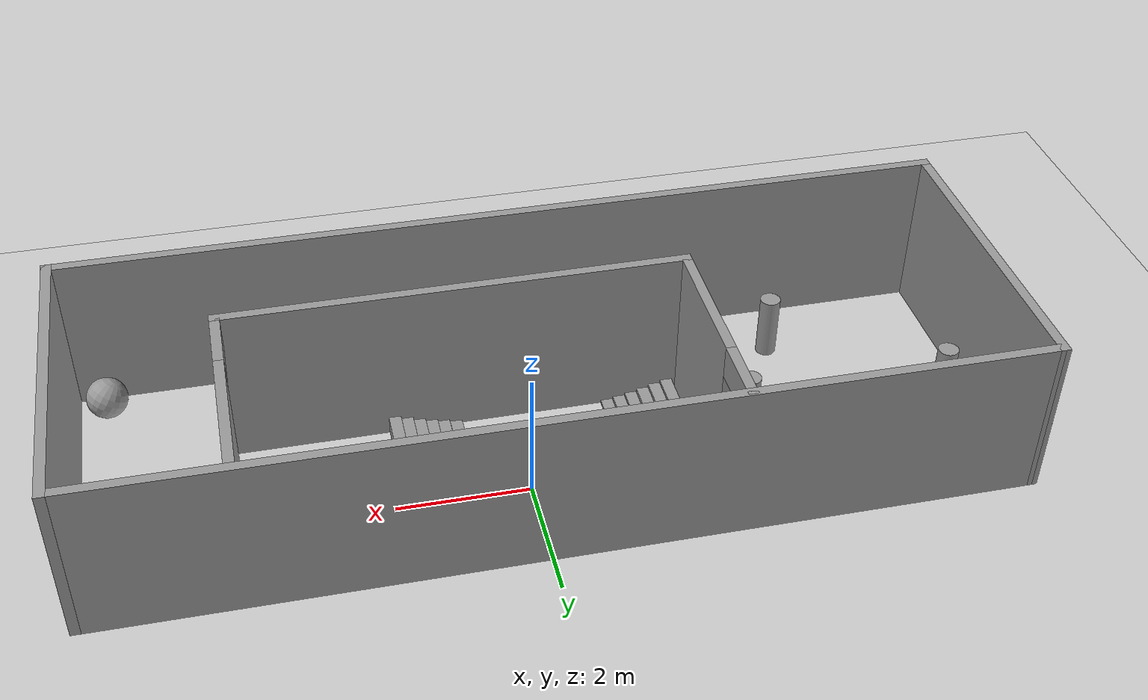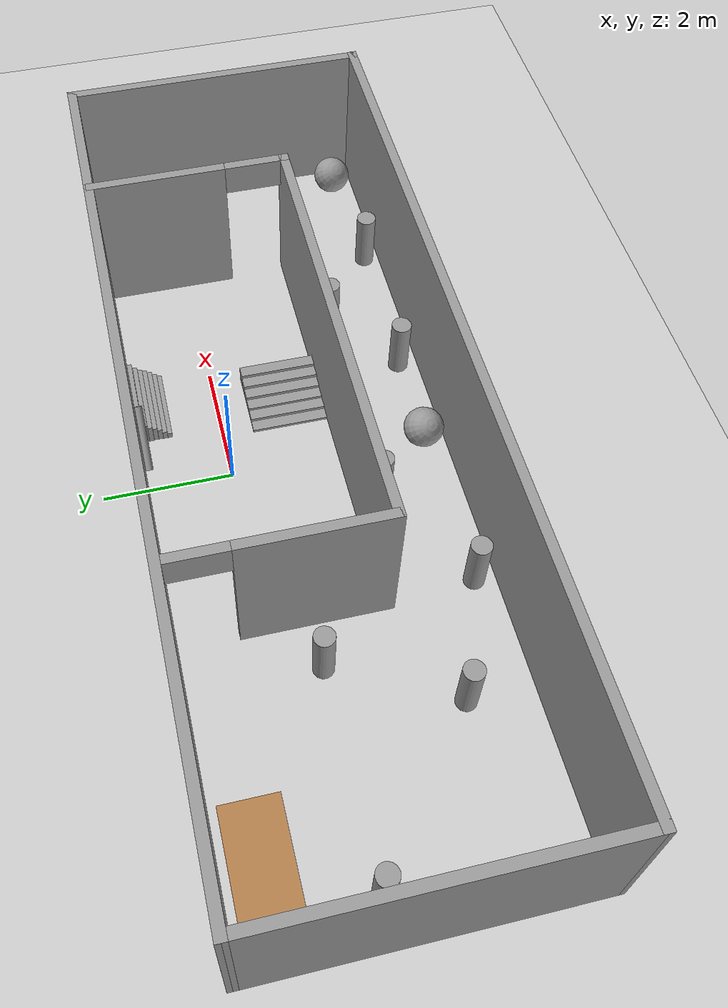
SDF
<sdf version="1.7">
 <world name="default">
  <plugin name="gazebo_ros_state" filename="libgazebo_ros_state.so">
   <ros><namespace>/gazebo</namespace></ros>
  </plugin>
  <physics type="ode">
   <max_step_size>0.001</max_step_size>
   <real_time_factor>1</real_time_factor>
   <real_time_update_rate>1000</real_time_update_rate>
   <ode>
    <solver>
     <type>quick</type>
     <iters>150</iters>
     <sor>1.3</sor>
     <use_dynamic_moi_rescaling>0</use_dynamic_moi_rescaling>
    </solver>
    <constraints>
     <cfm>1e-06</cfm>
     <erp>0.8</erp>
     <contact_max_correcting_vel>0.1</contact_max_correcting_vel>
     <contact_surface_layer>0.005</contact_surface_layer>
    </constraints>
   </ode>
   <gravity>0 0 -9.8</gravity>
  </physics>
  <scene>
   <sky><clouds><speed>12</speed></clouds></sky>
   <ambient>0.4 0.4 0.4 1</ambient>
   <background>0.7 0.7 0.7 1</background>
   <shadows>1</shadows>
  </scene>
  <light name="sun" type="directional">
   <pose>0 0 10 0 -0 0</pose>
   <diffuse>0.8 0.8 0.8 1</diffuse>
   <specular>0.2 0.2 0.2 1</specular>
   <attenuation>
    <range>1000</range>
    <constant>0.9</constant>
    <linear>0.01</linear>
    <quadratic>0.001</quadratic>
   </attenuation>
   <direction>-0.5 0.1 -0.9</direction>
   <spot><inner_angle>0</inner_angle><outer_angle>0</outer_angle><falloff>0</falloff></spot>
  </light>
  <model name="ground_plane">
   <static>1</static>
   <link name="link">
    <collision name="collision">
     <geometry><plane><normal>0 0 1</normal><size>100 100</size></plane></geometry>
     <surface>
      <contact><collide_bitmask>65535</collide_bitmask></contact>
      <friction><ode><mu>100</mu><mu2>50</mu2></ode></friction>
     </surface>
    </collision>
    <visual name="visual">
     <cast_shadows>0</cast_shadows>
     <geometry><plane><normal>0 0 1</normal><size>100 100</size></plane></geometry>
     <material>
      <script><uri>file://media/materials/scripts/gazebo.material</uri><name>Gazebo/Grey</name></script>
     </material>
    </visual>
   </link>
  </model>
  <gravity>0 0 -9.81</gravity>
  <magnetic_field>6e-06 2.3e-05 -4.2e-05</magnetic_field>
  <atmosphere type="adiabatic"/>
  <audio><device>default</device></audio>
  <spherical_coordinates>
   <surface_model>EARTH_WGS84</surface_model>
   <latitude_deg>0</latitude_deg>
   <longitude_deg>0</longitude_deg>
   <elevation>0</elevation>
   <heading_deg>0</heading_deg>
  </spherical_coordinates>
  <model name="world1.world">
   <pose>-0.325077 -1.045 0 0 -0 0</pose>
   <link name="Wall_12">
    <collision name="Wall_12_Collision">
     <geometry><box><size>13.75 0.15 2.5</size></box></geometry>
     <pose>0 0 1.25 0 -0 0</pose>
    </collision>
    <visual name="Wall_12_Visual">
     <pose>0 0 1.25 0 -0 0</pose>
     <geometry><box><size>13.75 0.15 2.5</size></box></geometry>
     <material>
      <script><uri>file://media/materials/scripts/gazebo.material</uri><name>Gazebo/Grey</name></script>
      <ambient>1 1 1 1</ambient>
     </material>
     <meta><layer>0</layer></meta>
    </visual>
    <pose>-0.004923 2.425 0 0 -0 0</pose>
   </link>
   <link name="Wall_13">
    <collision name="Wall_13_Collision">
     <geometry><box><size>5 0.15 2.5</size></box></geometry>
     <pose>0 0 1.25 0 -0 0</pose>
    </collision>
    <visual name="Wall_13_Visual">
     <pose>0 0 1.25 0 -0 0</pose>
     <geometry><box><size>5 0.15 2.5</size></box></geometry>
     <material>
      <script><uri>file://media/materials/scripts/gazebo.material</uri><name>Gazebo/Grey</name></script>
      <ambient>1 1 1 1</ambient>
     </material>
     <meta><layer>0</layer></meta>
    </visual>
    <pose>6.79508 -0 0 0 -0 -1.5708</pose>
   </link>
   <link name="Wall_14">
    <collision name="Wall_14_Collision">
     <geometry><box><size>0.16 0.15 2.5</size></box></geometry>
     <pose>0 0 1.25 0 -0 0</pose>
    </collision>
    <visual name="Wall_14_Visual">
     <pose>0 0 1.25 0 -0 0</pose>
     <geometry><box><size>0.16 0.15 2.5</size></box></geometry>
     <material>
      <script><uri>file://media/materials/scripts/gazebo.material</uri><name>Gazebo/Grey</name></script>
      <ambient>1 1 1 1</ambient>
     </material>
     <meta><layer>0</layer></meta>
    </visual>
    <pose>6.80008 -2.425 0 0 -0 0</pose>
   </link>
   <link name="Wall_15">
    <collision name="Wall_15_Collision">
     <geometry><box><size>13.75 0.15 2.5</size></box></geometry>
     <pose>0 0 1.25 0 -0 0</pose>
    </collision>
    <visual name="Wall_15_Visual">
     <pose>0 0 1.25 0 -0 0</pose>
     <geometry><box><size>13.75 0.15 2.5</size></box></geometry>
     <material>
      <script><uri>file://media/materials/scripts/gazebo.material</uri><name>Gazebo/Grey</name></script>
      <ambient>1 1 1 1</ambient>
     </material>
     <meta><layer>0</layer></meta>
    </visual>
    <pose>0.005077 -2.425 0 0 -0 3.14159</pose>
   </link>
   <link name="Wall_16">
    <collision name="Wall_16_Collision">
     <geometry><box><size>5.00001 0.15 2.5</size></box></geometry>
     <pose>0 0 1.25 0 -0 0</pose>
    </collision>
    <visual name="Wall_16_Visual">
     <pose>0 0 1.25 0 -0 0</pose>
     <geometry><box><size>5.00001 0.15 2.5</size></box></geometry>
     <material>
      <script><uri>file://media/materials/scripts/gazebo.material</uri><name>Gazebo/Grey</name></script>
      <ambient>1 1 1 1</ambient>
     </material>
     <meta><layer>0</layer></meta>
    </visual>
    <pose>-6.79992 -0 0 0 -0 1.57286</pose>
   </link>
   <link name="Wall_18">
    <pose>-2.36492 0.845 0 0 -0 -1.5708</pose>
    <visual name="Wall_18_Visual_0">
     <pose>-1.5725 0 1.25 0 -0 0</pose>
     <geometry><box><size>0.105 0.15 2.5</size></box></geometry>
     <material>
      <script><uri>file://media/materials/scripts/gazebo.material</uri><name>Gazebo/Grey</name></script>
      <ambient>1 1 1 1</ambient>
     </material>
     <meta><layer>0</layer></meta>
    </visual>
    <collision name="Wall_18_Collision_0">
     <geometry><box><size>0.105 0.15 2.5</size></box></geometry>
     <pose>-1.5725 0 1.25 0 -0 0</pose>
    </collision>
    <visual name="Wall_18_Visual_1">
     <pose>0.5025 0 1.25 0 -0 0</pose>
     <geometry><box><size>2.245 0.15 2.5</size></box></geometry>
     <material>
      <script><uri>file://media/materials/scripts/gazebo.material</uri><name>Gazebo/Grey</name></script>
      <ambient>1 1 1 1</ambient>
     </material>
     <meta><layer>0</layer></meta>
    </visual>
    <collision name="Wall_18_Collision_1">
     <geometry><box><size>2.245 0.15 2.5</size></box></geometry>
     <pose>0.5025 0 1.25 0 -0 0</pose>
    </collision>
    <visual name="Wall_18_Visual_2">
     <pose>-1.07 0 2.25 0 -0 0</pose>
     <geometry><box><size>0.9 0.15 0.5</size></box></geometry>
     <material>
      <script><uri>file://media/materials/scripts/gazebo.material</uri><name>Gazebo/Grey</name></script>
      <ambient>1 1 1 1</ambient>
     </material>
     <meta><layer>0</layer></meta>
    </visual>
    <collision name="Wall_18_Collision_2">
     <geometry><box><size>0.9 0.15 0.5</size></box></geometry>
     <pose>-1.07 0 2.25 0 -0 0</pose>
    </collision>
   </link>
   <link name="Wall_19">
    <collision name="Wall_19_Collision">
     <geometry><box><size>7 0.15 2.5</size></box></geometry>
     <pose>0 0 1.25 0 -0 0</pose>
    </collision>
    <visual name="Wall_19_Visual">
     <pose>0 0 1.25 0 -0 0</pose>
     <geometry><box><size>7 0.15 2.5</size></box></geometry>
     <material>
      <script><uri>file://media/materials/scripts/gazebo.material</uri><name>Gazebo/Grey</name></script>
      <ambient>1 1 1 1</ambient>
     </material>
     <meta><layer>0</layer></meta>
    </visual>
    <pose>1.06008 -0.705 0 0 -0 0</pose>
   </link>
   <link name="Wall_20">
    <pose>4.48508 0.845 0 0 -0 1.5708</pose>
    <visual name="Wall_20_Visual_0">
     <pose>-1.5525 0 1.25 0 -0 0</pose>
     <geometry><box><size>0.145 0.15 2.5</size></box></geometry>
     <material>
      <script><uri>file://media/materials/scripts/gazebo.material</uri><name>Gazebo/Grey</name></script>
      <ambient>1 1 1 1</ambient>
     </material>
     <meta><layer>0</layer></meta>
    </visual>
    <collision name="Wall_20_Collision_0">
     <geometry><box><size>0.145 0.15 2.5</size></box></geometry>
     <pose>-1.5525 0 1.25 0 -0 0</pose>
    </collision>
    <visual name="Wall_20_Visual_1">
     <pose>0.5225 0 1.25 0 -0 0</pose>
     <geometry><box><size>2.205 0.15 2.5</size></box></geometry>
     <material>
      <script><uri>file://media/materials/scripts/gazebo.material</uri><name>Gazebo/Grey</name></script>
      <ambient>1 1 1 1</ambient>
     </material>
     <meta><layer>0</layer></meta>
    </visual>
    <collision name="Wall_20_Collision_1">
     <geometry><box><size>2.205 0.15 2.5</size></box></geometry>
     <pose>0.5225 0 1.25 0 -0 0</pose>
    </collision>
    <visual name="Wall_20_Visual_2">
     <pose>-1.03 0 2.25 0 -0 0</pose>
     <geometry><box><size>0.9 0.15 0.5</size></box></geometry>
     <material>
      <script><uri>file://media/materials/scripts/gazebo.material</uri><name>Gazebo/Grey</name></script>
      <ambient>1 1 1 1</ambient>
     </material>
     <meta><layer>0</layer></meta>
    </visual>
    <collision name="Wall_20_Collision_2">
     <geometry><box><size>0.9 0.15 0.5</size></box></geometry>
     <pose>-1.03 0 2.25 0 -0 0</pose>
    </collision>
   </link>
   <static>1</static>
  </model>
  <model name="table_0">
   <static>1</static>
   <link name="link">
    <collision name="surface">
     <pose>0 0 1 0 -0 0</pose>
     <geometry><box><size>1.5 0.8 0.03</size></box></geometry>
     <surface><friction><ode><mu>0.6</mu><mu2>0.6</mu2></ode></friction></surface>
    </collision>
    <visual name="visual1">
     <pose>0 0 1 0 -0 0</pose>
     <geometry><box><size>1.5 0.8 0.03</size></box></geometry>
     <material>
      <script><uri>file://media/materials/scripts/gazebo.material</uri><name>Gazebo/Wood</name></script>
     </material>
    </visual>
    <collision name="front_left_leg">
     <pose>0.68 0.38 0.5 0 -0 0</pose>
     <geometry><cylinder><radius>0.02</radius><length>1</length></cylinder></geometry>
    </collision>
    <visual name="front_left_leg">
     <pose>0.68 0.38 0.5 0 -0 0</pose>
     <geometry><cylinder><radius>0.02</radius><length>1</length></cylinder></geometry>
     <material>
      <script><uri>file://media/materials/scripts/gazebo.material</uri><name>Gazebo/Grey</name></script>
     </material>
    </visual>
    <collision name="front_right_leg">
     <pose>0.68 -0.38 0.5 0 -0 0</pose>
     <geometry><cylinder><radius>0.02</radius><length>1</length></cylinder></geometry>
    </collision>
    <visual name="front_right_leg">
     <pose>0.68 -0.38 0.5 0 -0 0</pose>
     <geometry><cylinder><radius>0.02</radius><length>1</length></cylinder></geometry>
     <material>
      <script><uri>file://media/materials/scripts/gazebo.material</uri><name>Gazebo/Grey</name></script>
     </material>
    </visual>
    <collision name="back_right_leg">
     <pose>-0.68 -0.38 0.5 0 -0 0</pose>
     <geometry><cylinder><radius>0.02</radius><length>1</length></cylinder></geometry>
    </collision>
    <visual name="back_right_leg">
     <pose>-0.68 -0.38 0.5 0 -0 0</pose>
     <geometry><cylinder><radius>0.02</radius><length>1</length></cylinder></geometry>
     <material>
      <script><uri>file://media/materials/scripts/gazebo.material</uri><name>Gazebo/Grey</name></script>
     </material>
    </visual>
    <collision name="back_left_leg">
     <pose>-0.68 0.38 0.5 0 -0 0</pose>
     <geometry><cylinder><radius>0.02</radius><length>1</length></cylinder></geometry>
    </collision>
    <visual name="back_left_leg">
     <pose>-0.68 0.38 0.5 0 -0 0</pose>
     <geometry><cylinder><radius>0.02</radius><length>1</length></cylinder></geometry>
     <material>
      <script><uri>file://media/materials/scripts/gazebo.material</uri><name>Gazebo/Grey</name></script>
     </material>
    </visual>
   </link>
   <pose>-6.08584 0.782727 0 0 -0 0</pose>
  </model>
  <model name="unit_cylinder_0">
   <pose>4.02247 -3.14507 0.499994 0 -0 -0.000214</pose>
   <link name="link">
    <inertial>
     <mass>1</mass>
     <inertia><ixx>0.145833</ixx><ixy>0</ixy><ixz>0</ixz><iyy>0.145833</iyy><iyz>0</iyz><izz>0.125</izz></inertia>
    </inertial>
    <collision name="collision">
     <geometry><cylinder><radius>0.156489</radius><length>1</length></cylinder></geometry>
    </collision>
    <visual name="visual">
     <geometry><cylinder><radius>0.156489</radius><length>1</length></cylinder></geometry>
     <material>
      <script><name>Gazebo/Grey</name><uri>file://media/materials/scripts/gazebo.material</uri></script>
     </material>
    </visual>
   </link>
  </model>
  <model name="unit_cylinder_0_clone">
   <pose>2.65479 -2.17917 0.499996 0 -0 -0.000124</pose>
   <link name="link">
    <inertial>
     <mass>1</mass>
     <inertia><ixx>0.145833</ixx><ixy>0</ixy><ixz>0</ixz><iyy>0.145833</iyy><iyz>0</iyz><izz>0.125</izz></inertia>
    </inertial>
    <collision name="collision">
     <geometry><cylinder><radius>0.156489</radius><length>1</length></cylinder></geometry>
    </collision>
    <visual name="visual">
     <geometry><cylinder><radius>0.156489</radius><length>1</length></cylinder></geometry>
     <material>
      <script><name>Gazebo/Grey</name><uri>file://media/materials/scripts/gazebo.material</uri></script>
     </material>
    </visual>
   </link>
  </model>
  <model name="unit_cylinder_0_clone_clone">
   <pose>1.5579 -3.08066 0.499993 0 0 -0.000124</pose>
   <link name="link">
    <inertial>
     <mass>1</mass>
     <inertia><ixx>0.145833</ixx><ixy>0</ixy><ixz>0</ixz><iyy>0.145833</iyy><iyz>0</iyz><izz>0.125</izz></inertia>
    </inertial>
    <collision name="collision">
     <geometry><cylinder><radius>0.156489</radius><length>1</length></cylinder></geometry>
    </collision>
    <visual name="visual">
     <geometry><cylinder><radius>0.156489</radius><length>1</length></cylinder></geometry>
     <material>
      <script><name>Gazebo/Grey</name><uri>file://media/materials/scripts/gazebo.material</uri></script>
     </material>
    </visual>
   </link>
  </model>
  <model name="unit_cylinder_0_clone_clone_0">
   <pose>-0.870477 -2.13106 0.499996 0 -0 -0.000124</pose>
   <link name="link">
    <inertial>
     <mass>1</mass>
     <inertia><ixx>0.145833</ixx><ixy>0</ixy><ixz>0</ixz><iyy>0.145833</iyy><iyz>0</iyz><izz>0.125</izz></inertia>
    </inertial>
    <collision name="collision">
     <geometry><cylinder><radius>0.156489</radius><length>1</length></cylinder></geometry>
    </collision>
    <visual name="visual">
     <geometry><cylinder><radius>0.156489</radius><length>1</length></cylinder></geometry>
     <material>
      <script><name>Gazebo/Grey</name><uri>file://media/materials/scripts/gazebo.material</uri></script>
     </material>
    </visual>
   </link>
  </model>
  <model name="unit_cylinder_0_clone_clone_1">
   <pose>-2.58628 -3.07057 0.499997 0 -0 -0.000124</pose>
   <link name="link">
    <inertial>
     <mass>1</mass>
     <inertia><ixx>0.145833</ixx><ixy>0</ixy><ixz>0</ixz><iyy>0.145833</iyy><iyz>0</iyz><izz>0.125</izz></inertia>
    </inertial>
    <collision name="collision">
     <geometry><cylinder><radius>0.156489</radius><length>1</length></cylinder></geometry>
    </collision>
    <visual name="visual">
     <geometry><cylinder><radius>0.156489</radius><length>1</length></cylinder></geometry>
     <material>
      <script><name>Gazebo/Grey</name><uri>file://media/materials/scripts/gazebo.material</uri></script>
     </material>
    </visual>
   </link>
  </model>
  <model name="unit_cylinder_0_clone_clone_2">
   <pose>-4.34387 -2.39856 0.499996 0 -0 -0.000124</pose>
   <link name="link">
    <inertial>
     <mass>1</mass>
     <inertia><ixx>0.145833</ixx><ixy>0</ixy><ixz>0</ixz><iyy>0.145833</iyy><iyz>0</iyz><izz>0.125</izz></inertia>
    </inertial>
    <collision name="collision">
     <geometry><cylinder><radius>0.156489</radius><length>1</length></cylinder></geometry>
    </collision>
    <visual name="visual">
     <geometry><cylinder><radius>0.156489</radius><length>1</length></cylinder></geometry>
     <material>
      <script><name>Gazebo/Grey</name><uri>file://media/materials/scripts/gazebo.material</uri></script>
     </material>
    </visual>
   </link>
  </model>
  <model name="unit_cylinder_0_clone_clone_3">
   <pose>-6.56896 -0.625653 0.499992 0 0 -0.000123</pose>
   <link name="link">
    <inertial>
     <mass>1</mass>
     <inertia><ixx>0.145833</ixx><ixy>0</ixy><ixz>0</ixz><iyy>0.145833</iyy><iyz>0</iyz><izz>0.125</izz></inertia>
    </inertial>
    <collision name="collision">
     <geometry><cylinder><radius>0.156489</radius><length>1</length></cylinder></geometry>
    </collision>
    <visual name="visual">
     <geometry><cylinder><radius>0.156489</radius><length>1</length></cylinder></geometry>
     <material>
      <script><name>Gazebo/Grey</name><uri>file://media/materials/scripts/gazebo.material</uri></script>
     </material>
    </visual>
   </link>
  </model>
  <model name="unit_cylinder_0_clone_clone_4">
   <pose>-3.44687 -0.61696 0.499997 0 -0 -0.000124</pose>
   <link name="link">
    <inertial>
     <mass>1</mass>
     <inertia><ixx>0.145833</ixx><ixy>0</ixy><ixz>0</ixz><iyy>0.145833</iyy><iyz>0</iyz><izz>0.125</izz></inertia>
    </inertial>
    <collision name="collision">
     <geometry><cylinder><radius>0.156489</radius><length>1</length></cylinder></geometry>
    </collision>
    <visual name="visual">
     <geometry><cylinder><radius>0.156489</radius><length>1</length></cylinder></geometry>
     <material>
      <script><name>Gazebo/Grey</name><uri>file://media/materials/scripts/gazebo.material</uri></script>
     </material>
    </visual>
   </link>
  </model>
  <model name="unit_sphere">
   <pose>5.96174 -3.01695 0.314241 -0.624493 -0.090109 1.83206</pose>
   <link name="link">
    <inertial>
     <mass>1</mass>
     <inertia><ixx>0.1</ixx><ixy>0</ixy><ixz>0</ixz><iyy>0.1</iyy><iyz>0</iyz><izz>0.1</izz></inertia>
    </inertial>
    <collision name="collision"><geometry><sphere><radius>0.314241</radius></sphere></geometry></collision>
    <visual name="visual">
     <geometry><sphere><radius>0.314241</radius></sphere></geometry>
     <material>
      <script><name>Gazebo/Grey</name><uri>file://media/materials/scripts/gazebo.material</uri></script>
     </material>
    </visual>
   </link>
  </model>
  <model name="unit_sphere_clone">
   <pose>0.019667 -3.05296 0.314241 -0.624493 -0.090109 1.83206</pose>
   <link name="link">
    <inertial>
     <mass>1</mass>
     <inertia><ixx>0.1</ixx><ixy>0</ixy><ixz>0</ixz><iyy>0.1</iyy><iyz>0</iyz><izz>0.1</izz></inertia>
    </inertial>
    <collision name="collision"><geometry><sphere><radius>0.314241</radius></sphere></geometry></collision>
    <visual name="visual">
     <geometry><sphere><radius>0.314241</radius></sphere></geometry>
     <material>
      <script><name>Gazebo/Grey</name><uri>file://media/materials/scripts/gazebo.material</uri></script>
     </material>
    </visual>
   </link>
  </model>
  <model name="unit_box_clone_clone_0_clone_0">
   <pose>1.54603 1.26688 0.240385 -7e-06 -0 1.56895</pose>
   <link name="link">
    <inertial>
     <mass>1</mass>
     <inertia>
      <ixx>0.166667</ixx>
      <ixy>0</ixy>
      <ixz>0</ixz>
      <iyy>0.166667</iyy>
      <iyz>0</iyz>
      <izz>0.166667</izz>
     </inertia>
    </inertial>
    <collision name="collision"><geometry><box><size>0.073006 1.19698 0.480819</size></box></geometry></collision>
    <visual name="visual">
     <geometry><box><size>0.073006 1.19698 0.480819</size></box></geometry>
     <material>
      <script><name>Gazebo/Grey</name><uri>file://media/materials/scripts/gazebo.material</uri></script>
     </material>
    </visual>
   </link>
  </model>
  <model name="unit_box_clone_clone_0_clone_1">
   <pose>1.52868 1.1904 0.201564 1e-05 -0 1.56292</pose>
   <link name="link">
    <inertial>
     <mass>1</mass>
     <inertia>
      <ixx>0.166667</ixx>
      <ixy>0</ixy>
      <ixz>0</ixz>
      <iyy>0.166667</iyy>
      <iyz>0</iyz>
      <izz>0.166667</izz>
     </inertia>
    </inertial>
    <collision name="collision"><geometry><box><size>0.073006 1.19698 0.40314</size></box></geometry></collision>
    <visual name="visual">
     <geometry><box><size>0.073006 1.19698 0.40314</size></box></geometry>
     <material>
      <script><name>Gazebo/Grey</name><uri>file://media/materials/scripts/gazebo.material</uri></script>
     </material>
    </visual>
   </link>
  </model>
  <model name="unit_box_clone_clone_0_clone_2">
   <pose>1.52438 1.11742 0.167292 1.5e-05 -0 1.56292</pose>
   <link name="link">
    <inertial>
     <mass>1</mass>
     <inertia>
      <ixx>0.166667</ixx>
      <ixy>0</ixy>
      <ixz>0</ixz>
      <iyy>0.166667</iyy>
      <iyz>0</iyz>
      <izz>0.166667</izz>
     </inertia>
    </inertial>
    <collision name="collision"><geometry><box><size>0.073006 1.19698 0.334602</size></box></geometry></collision>
    <visual name="visual">
     <geometry><box><size>0.073006 1.19698 0.334602</size></box></geometry>
     <material>
      <script><name>Gazebo/Grey</name><uri>file://media/materials/scripts/gazebo.material</uri></script>
     </material>
    </visual>
   </link>
  </model>
  <model name="unit_box_clone_clone_0_clone_3">
   <pose>1.53458 1.04432 0.139411 8e-06 -0 1.5629</pose>
   <link name="link">
    <inertial>
     <mass>1</mass>
     <inertia>
      <ixx>0.166667</ixx>
      <ixy>0</ixy>
      <ixz>0</ixz>
      <iyy>0.166667</iyy>
      <iyz>0</iyz>
      <izz>0.166667</izz>
     </inertia>
    </inertial>
    <collision name="collision"><geometry><box><size>0.073006 1.19698 0.27883</size></box></geometry></collision>
    <visual name="visual">
     <geometry><box><size>0.073006 1.19698 0.27883</size></box></geometry>
     <material>
      <script><name>Gazebo/Grey</name><uri>file://media/materials/scripts/gazebo.material</uri></script>
     </material>
    </visual>
   </link>
  </model>
  <model name="unit_box_clone_clone_0_clone_4">
   <pose>1.5332 0.97132 0.111864 1.1e-05 -1e-06 1.5629</pose>
   <link name="link">
    <inertial>
     <mass>1</mass>
     <inertia>
      <ixx>0.166667</ixx>
      <ixy>0</ixy>
      <ixz>0</ixz>
      <iyy>0.166667</iyy>
      <iyz>0</iyz>
      <izz>0.166667</izz>
     </inertia>
    </inertial>
    <collision name="collision"><geometry><box><size>0.073006 1.19698 0.223741</size></box></geometry></collision>
    <visual name="visual">
     <geometry><box><size>0.073006 1.19698 0.223741</size></box></geometry>
     <material>
      <script><name>Gazebo/Grey</name><uri>file://media/materials/scripts/gazebo.material</uri></script>
     </material>
    </visual>
   </link>
  </model>
  <model name="unit_box_clone_clone_0_clone_5">
   <pose>1.5295 0.898335 0.076837 -8e-06 -0 1.56289</pose>
   <link name="link">
    <inertial>
     <mass>1</mass>
     <inertia>
      <ixx>0.166667</ixx>
      <ixy>0</ixy>
      <ixz>0</ixz>
      <iyy>0.166667</iyy>
      <iyz>0</iyz>
      <izz>0.166667</izz>
     </inertia>
    </inertial>
    <collision name="collision"><geometry><box><size>0.073006 1.19698 0.153703</size></box></geometry></collision>
    <visual name="visual">
     <geometry><box><size>0.073006 1.19698 0.153703</size></box></geometry>
     <material>
      <script><name>Gazebo/Grey</name><uri>file://media/materials/scripts/gazebo.material</uri></script>
     </material>
    </visual>
   </link>
  </model>
  <model name="unit_box_clone_clone_0_clone_6">
   <pose>1.52826 0.825295 0.04958 -9e-06 -0 1.56282</pose>
   <link name="link">
    <inertial>
     <mass>1</mass>
     <inertia>
      <ixx>0.166667</ixx>
      <ixy>0</ixy>
      <ixz>0</ixz>
      <iyy>0.166667</iyy>
      <iyz>0</iyz>
      <izz>0.166667</izz>
     </inertia>
    </inertial>
    <collision name="collision"><geometry><box><size>0.073006 1.19698 0.09919</size></box></geometry></collision>
    <visual name="visual">
     <geometry><box><size>0.073006 1.19698 0.09919</size></box></geometry>
     <material>
      <script><name>Gazebo/Grey</name><uri>file://media/materials/scripts/gazebo.material</uri></script>
     </material>
    </visual>
   </link>
  </model>
  <model name="unit_box_clone_clone_clone">
   <pose>-1.53163 -1.07582 0.022793 0 -0 3.7e-05</pose>
   <link name="link">
    <inertial>
     <mass>1</mass>
     <inertia>
      <ixx>0.166667</ixx>
      <ixy>0</ixy>
      <ixz>0</ixz>
      <iyy>0.166667</iyy>
      <iyz>0</iyz>
      <izz>0.166667</izz>
     </inertia>
    </inertial>
    <collision name="collision"><geometry><box><size>0.182518 1.19698 0.045586</size></box></geometry></collision>
    <visual name="visual">
     <geometry><box><size>0.182518 1.19698 0.045586</size></box></geometry>
     <material>
      <script><name>Gazebo/Grey</name><uri>file://media/materials/scripts/gazebo.material</uri></script>
     </material>
    </visual>
   </link>
  </model>
  <model name="unit_box_clone_clone_clone_clone">
   <pose>-1.72169 -1.07466 0.04263 0 -0 3.7e-05</pose>
   <link name="link">
    <inertial>
     <mass>1</mass>
     <inertia>
      <ixx>0.166667</ixx>
      <ixy>0</ixy>
      <ixz>0</ixz>
      <iyy>0.166667</iyy>
      <iyz>0</iyz>
      <izz>0.166667</izz>
     </inertia>
    </inertial>
    <collision name="collision">
     <geometry><box><size>0.182518 1.19698 0.0852595</size></box></geometry>
    </collision>
    <visual name="visual">
     <geometry><box><size>0.182518 1.19698 0.0852595</size></box></geometry>
     <material>
      <script><name>Gazebo/Grey</name><uri>file://media/materials/scripts/gazebo.material</uri></script>
     </material>
    </visual>
   </link>
  </model>
  <model name="unit_box_clone_clone_clone_clone_0">
   <pose>-1.90641 -1.0734 0.064213 0 -0 3.7e-05</pose>
   <link name="link">
    <inertial>
     <mass>1</mass>
     <inertia>
      <ixx>0.166667</ixx>
      <ixy>0</ixy>
      <ixz>0</ixz>
      <iyy>0.166667</iyy>
      <iyz>0</iyz>
      <izz>0.166667</izz>
     </inertia>
    </inertial>
    <collision name="collision"><geometry><box><size>0.182518 1.19698 0.128426</size></box></geometry></collision>
    <visual name="visual">
     <geometry><box><size>0.182518 1.19698 0.128426</size></box></geometry>
     <material>
      <script><name>Gazebo/Grey</name><uri>file://media/materials/scripts/gazebo.material</uri></script>
     </material>
    </visual>
   </link>
  </model>
  <model name="unit_box_clone_clone_clone_clone_1">
   <pose>-2.09635 -1.07651 0.089122 0 -0 0</pose>
   <link name="link">
    <inertial>
     <mass>1</mass>
     <inertia>
      <ixx>0.166667</ixx>
      <ixy>0</ixy>
      <ixz>0</ixz>
      <iyy>0.166667</iyy>
      <iyz>0</iyz>
      <izz>0.166667</izz>
     </inertia>
    </inertial>
    <collision name="collision"><geometry><box><size>0.182518 1.19698 0.178244</size></box></geometry></collision>
    <visual name="visual">
     <geometry><box><size>0.182518 1.19698 0.178244</size></box></geometry>
     <material>
      <script><name>Gazebo/Grey</name><uri>file://media/materials/scripts/gazebo.material</uri></script>
     </material>
    </visual>
   </link>
  </model>
  <model name="unit_box_clone_clone_clone_clone_2">
   <pose>-2.27932 -1.07646 0.11772 0 0 -2.8e-05</pose>
   <link name="link">
    <inertial>
     <mass>1</mass>
     <inertia>
      <ixx>0.166667</ixx>
      <ixy>0</ixy>
      <ixz>0</ixz>
      <iyy>0.166667</iyy>
      <iyz>0</iyz>
      <izz>0.166667</izz>
     </inertia>
    </inertial>
    <collision name="collision"><geometry><box><size>0.182518 1.19698 0.23544</size></box></geometry></collision>
    <visual name="visual">
     <geometry><box><size>0.182518 1.19698 0.23544</size></box></geometry>
     <material>
      <script><name>Gazebo/Grey</name><uri>file://media/materials/scripts/gazebo.material</uri></script>
     </material>
    </visual>
   </link>
  </model>
  <model name="unit_box_clone_clone_clone_clone_3">
   <pose>-2.46185 -1.06956 0.144685 0 0 -2.9e-05</pose>
   <link name="link">
    <inertial>
     <mass>1</mass>
     <inertia>
      <ixx>0.166667</ixx>
      <ixy>0</ixy>
      <ixz>0</ixz>
      <iyy>0.166667</iyy>
      <iyz>0</iyz>
      <izz>0.166667</izz>
     </inertia>
    </inertial>
    <collision name="collision"><geometry><box><size>0.182518 1.19698 0.289369</size></box></geometry></collision>
    <visual name="visual">
     <geometry><box><size>0.182518 1.19698 0.289369</size></box></geometry>
     <material>
      <script><name>Gazebo/Grey</name><uri>file://media/materials/scripts/gazebo.material</uri></script>
     </material>
    </visual>
   </link>
  </model>
  <model name="unit_cylinder">
   <pose>0.729555 1.24344 0.371206 -0.033054 0.859193 -0.048326</pose>
   <link name="link">
    <inertial>
     <mass>1</mass>
     <inertia><ixx>0.145833</ixx><ixy>0</ixy><ixz>0</ixz><iyy>0.145833</iyy><iyz>0</iyz><izz>0.125</izz></inertia>
    </inertial>
    <collision name="collision">
     <geometry><cylinder><radius>0.059224</radius><length>1</length></cylinder></geometry>
    </collision>
    <visual name="visual">
     <geometry><cylinder><radius>0.059224</radius><length>1</length></cylinder></geometry>
     <material>
      <script><name>Gazebo/Grey</name><uri>file://media/materials/scripts/gazebo.material</uri></script>
     </material>
    </visual>
   </link>
  </model>
  <model name="unit_box_clone_clone_clone_clone_3_clone">
   <pose>1.74807 -1.0764 0.144684 0 0 -0.000964</pose>
   <link name="link">
    <inertial>
     <mass>1</mass>
     <inertia>
      <ixx>0.166667</ixx>
      <ixy>0</ixy>
      <ixz>0</ixz>
      <iyy>0.166667</iyy>
      <iyz>0</iyz>
      <izz>0.166667</izz>
     </inertia>
    </inertial>
    <collision name="collision"><geometry><box><size>0.182518 1.19698 0.289369</size></box></geometry></collision>
    <visual name="visual">
     <geometry><box><size>0.182518 1.19698 0.289369</size></box></geometry>
     <material>
      <script><name>Gazebo/Grey</name><uri>file://media/materials/scripts/gazebo.material</uri></script>
     </material>
    </visual>
   </link>
  </model>
  <model name="unit_box_clone_clone_clone_clone_2_clone">
   <pose>1.56541 -1.07643 0.11772 -0 -0 -0.00087</pose>
   <link name="link">
    <inertial>
     <mass>1</mass>
     <inertia>
      <ixx>0.166667</ixx>
      <ixy>0</ixy>
      <ixz>0</ixz>
      <iyy>0.166667</iyy>
      <iyz>0</iyz>
      <izz>0.166667</izz>
     </inertia>
    </inertial>
    <collision name="collision"><geometry><box><size>0.182518 1.19698 0.23544</size></box></geometry></collision>
    <visual name="visual">
     <geometry><box><size>0.182518 1.19698 0.23544</size></box></geometry>
     <material>
      <script><name>Gazebo/Grey</name><uri>file://media/materials/scripts/gazebo.material</uri></script>
     </material>
    </visual>
   </link>
  </model>
  <model name="unit_box_clone_clone_clone_clone_1_clone">
   <pose>1.38288 -1.07466 0.089122 -0 -0 -0.000878</pose>
   <link name="link">
    <inertial>
     <mass>1</mass>
     <inertia>
      <ixx>0.166667</ixx>
      <ixy>0</ixy>
      <ixz>0</ixz>
      <iyy>0.166667</iyy>
      <iyz>0</iyz>
      <izz>0.166667</izz>
     </inertia>
    </inertial>
    <collision name="collision"><geometry><box><size>0.182518 1.19698 0.178244</size></box></geometry></collision>
    <visual name="visual">
     <geometry><box><size>0.182518 1.19698 0.178244</size></box></geometry>
     <material>
      <script><name>Gazebo/Grey</name><uri>file://media/materials/scripts/gazebo.material</uri></script>
     </material>
    </visual>
   </link>
  </model>
  <model name="unit_box_clone_clone_clone_clone_0_clone">
   <pose>1.19809 -1.07482 0.064213 0 -0 0.000486</pose>
   <link name="link">
    <inertial>
     <mass>1</mass>
     <inertia>
      <ixx>0.166667</ixx>
      <ixy>0</ixy>
      <ixz>0</ixz>
      <iyy>0.166667</iyy>
      <iyz>0</iyz>
      <izz>0.166667</izz>
     </inertia>
    </inertial>
    <collision name="collision"><geometry><box><size>0.182518 1.19698 0.128426</size></box></geometry></collision>
    <visual name="visual">
     <geometry><box><size>0.182518 1.19698 0.128426</size></box></geometry>
     <material>
      <script><name>Gazebo/Grey</name><uri>file://media/materials/scripts/gazebo.material</uri></script>
     </material>
    </visual>
   </link>
  </model>
  <model name="unit_box_clone_clone_clone_clone_clone">
   <pose>1.01554 -1.07645 0.042629 0 -0 0.000485</pose>
   <link name="link">
    <inertial>
     <mass>1</mass>
     <inertia>
      <ixx>0.166667</ixx>
      <ixy>0</ixy>
      <ixz>0</ixz>
      <iyy>0.166667</iyy>
      <iyz>0</iyz>
      <izz>0.166667</izz>
     </inertia>
    </inertial>
    <collision name="collision"><geometry><box><size>0.182518 1.19698 0.085259</size></box></geometry></collision>
    <visual name="visual">
     <geometry><box><size>0.182518 1.19698 0.085259</size></box></geometry>
     <material>
      <script><name>Gazebo/Grey</name><uri>file://media/materials/scripts/gazebo.material</uri></script>
     </material>
    </visual>
   </link>
  </model>
  <model name="unit_box_clone_clone_clone_clone_4">
   <pose>0.824074 -1.07651 0.022793 0 -0 0</pose>
   <link name="link">
    <inertial>
     <mass>1</mass>
     <inertia>
      <ixx>0.166667</ixx>
      <ixy>0</ixy>
      <ixz>0</ixz>
      <iyy>0.166667</iyy>
      <iyz>0</iyz>
      <izz>0.166667</izz>
     </inertia>
    </inertial>
    <collision name="collision"><geometry><box><size>0.182518 1.19698 0.045586</size></box></geometry></collision>
    <visual name="visual">
     <geometry><box><size>0.182518 1.19698 0.045586</size></box></geometry>
     <material>
      <script><name>Gazebo/Grey</name><uri>file://media/materials/scripts/gazebo.material</uri></script>
     </material>
    </visual>
   </link>
  </model>
 </world>
</sdf>
